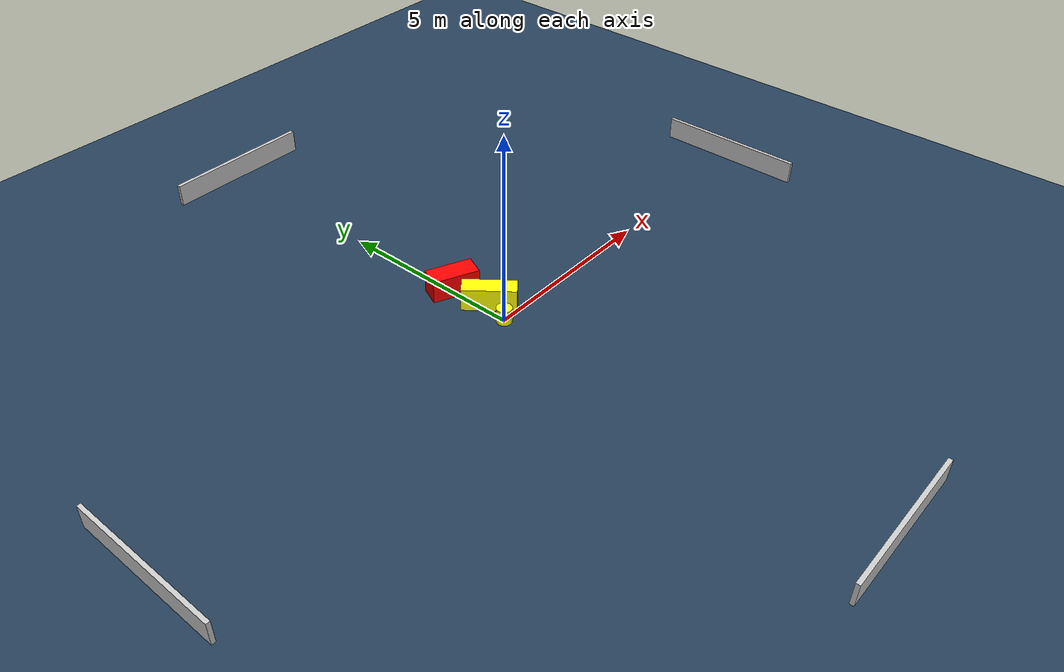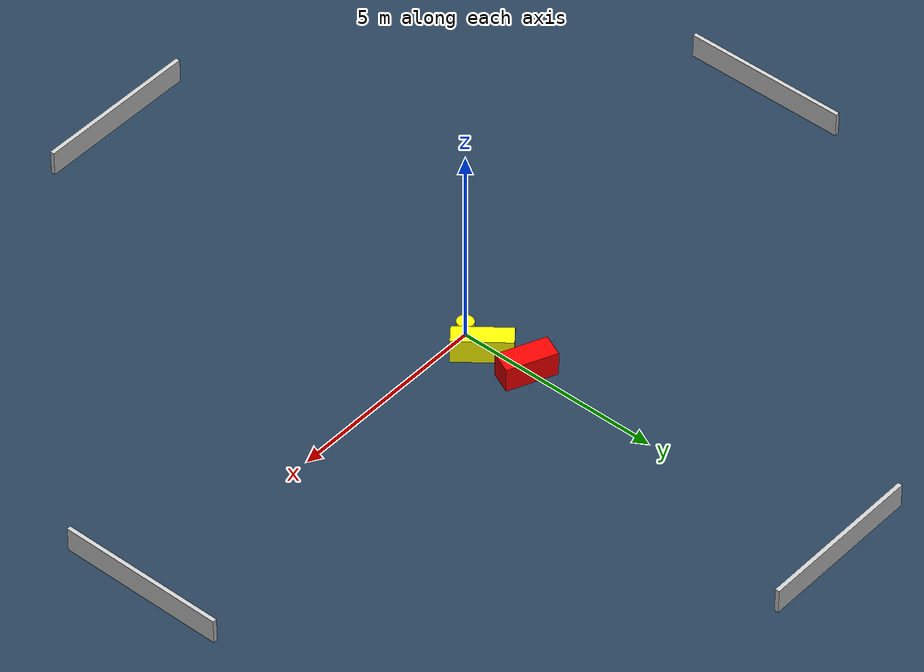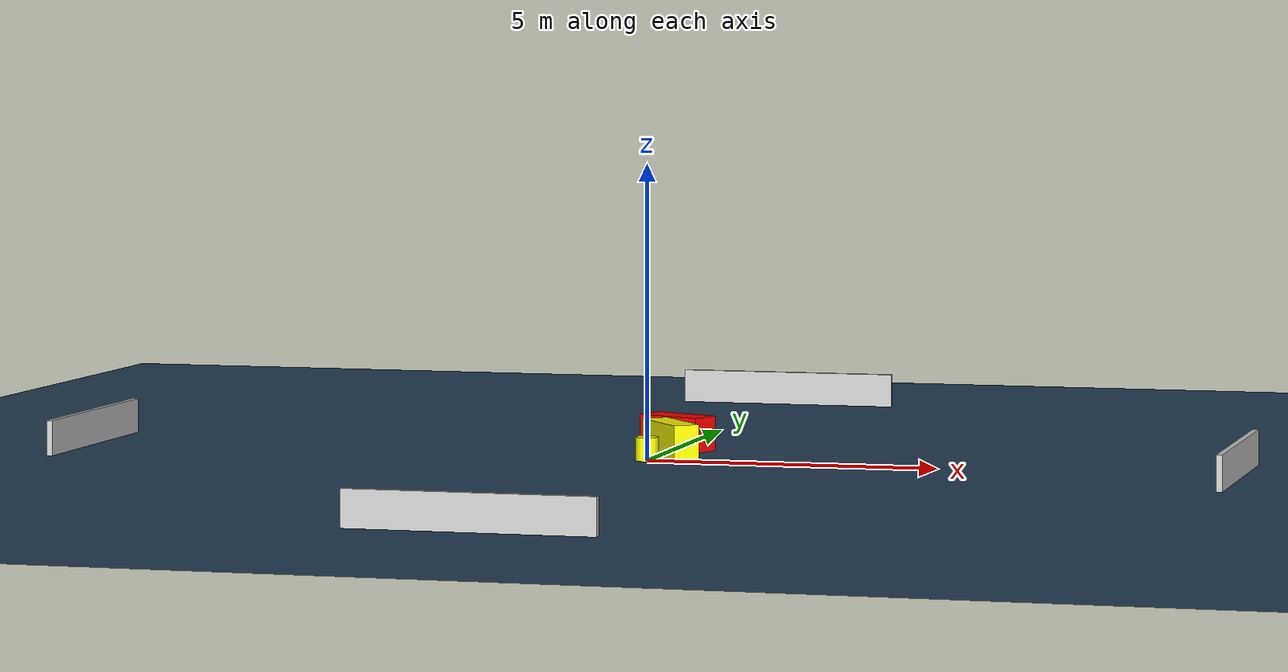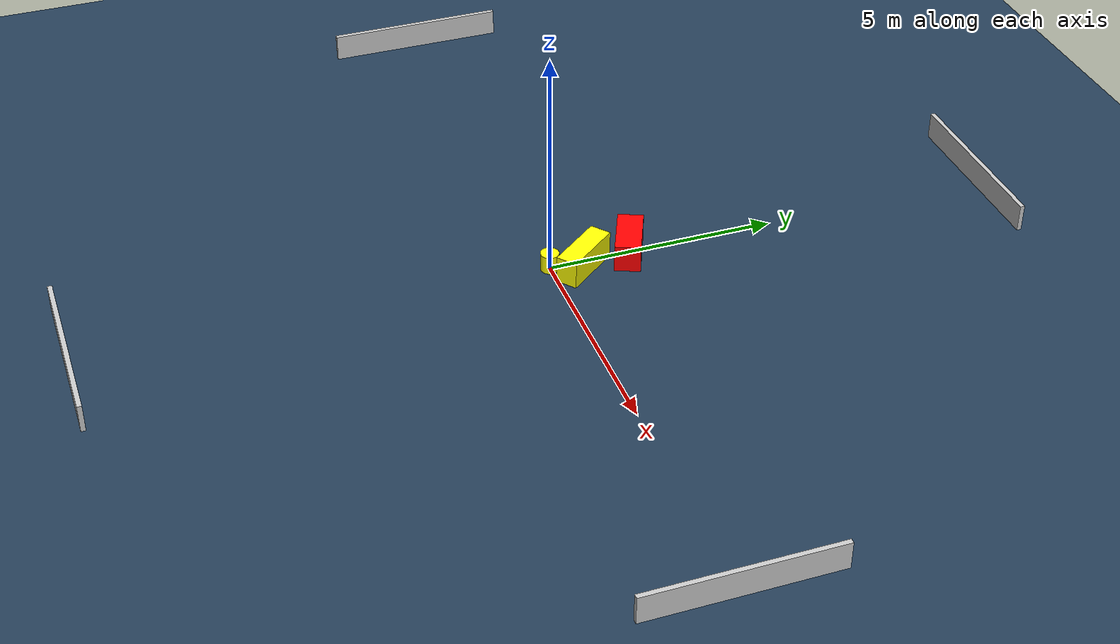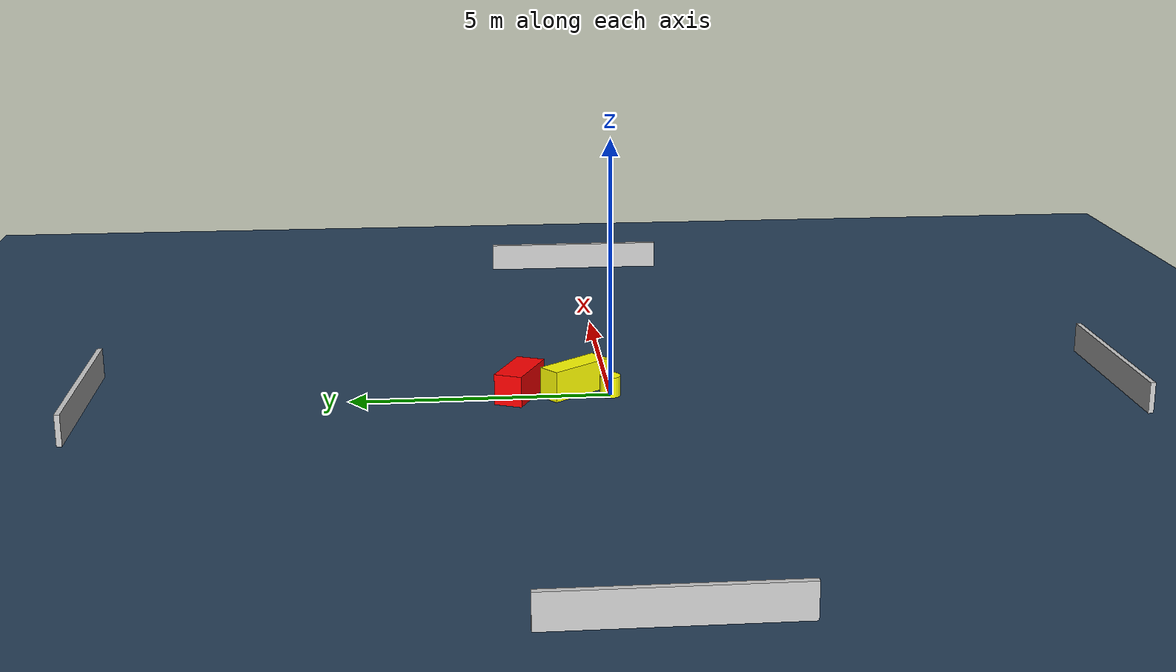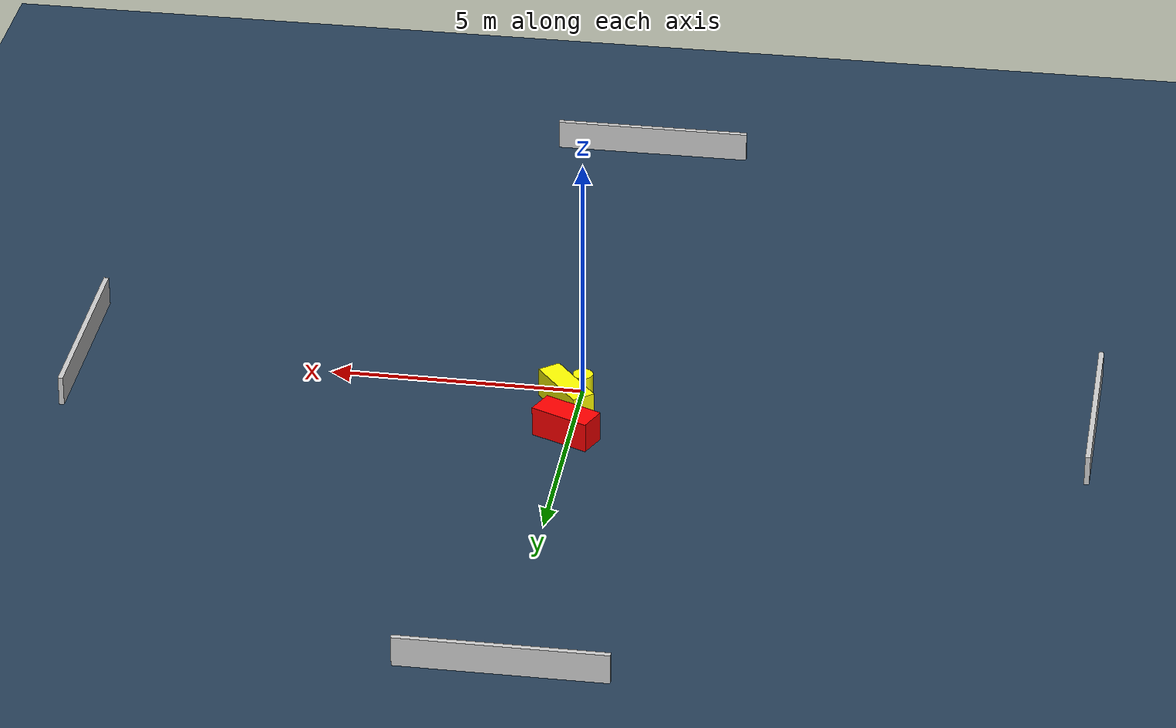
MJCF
<?xml version="1.0" ?>
<mujoco model="generated_environment">
  <option timestep="0.01" integrator="RK4" cone="elliptic"/>
  <default>
    <geom density="1"/>
  </default>
  <asset>
    <texture builtin="gradient" height="3072" name="skybox" rgb1="0.3 0.5 0.7" rgb2="0 0 0" type="skybox" width="512"/>
    <texture builtin="checker" height="300" name="groundplane" rgb1="0.2 0.3 0.4" rgb2="0.1 0.2 0.3" type="2d" width="300"/>
    <material name="groundplane" reflectance="0.2" texrepeat="5 5" texture="groundplane"/>
  </asset>
  <worldbody>
    <light dir="0 0 -1" directional="true" pos="0 0 1.5"/>
    <geom condim="3" friction="0.5 0.005 0.001" material="groundplane" name="floor" pos="0 0 0" size="0 0 0.05" type="plane"/>
    <body name="walls">
      <geom name="wall_1" condim="4" pos="-10.0 0.0 0.3" rgba="0.800000011920929 0.800000011920929 0.800000011920929 1.0" size="0.05 2.0 0.3" type="box"/>
      <geom name="wall_2" condim="4" pos="10.0 0.0 0.3" rgba="0.800000011920929 0.800000011920929 0.800000011920929 1.0" size="0.05 2.0 0.3" type="box"/>
      <geom name="wall_3" condim="4" pos="0.0 -10.0 0.3" rgba="0.800000011920929 0.800000011920929 0.800000011920929 1.0" size="2.0 0.05 0.3" type="box"/>
      <geom name="wall_4" condim="4" pos="0.0 10.0 0.3" rgba="0.800000011920929 0.800000011920929 0.800000011920929 1.0" size="2.0 0.05 0.3" type="box"/>
    </body>
    <body name="robot">
      <joint name="joint_x" type="slide" pos="0 0 0" axis="1 0 0"/>
      <joint name="joint_y" type="slide" pos="0 0 0" axis="0 1 0"/>
      <geom name="robot" type="cylinder" pos="0.0 0.0 0.2" size="0.2 0.2 0.0" mass="5.0" friction="1.0 0.005 0.0001" condim="4" rgba="1.0 1.0 0.0 1.0"/>
    </body>
    <body name="obstacle_1_movable">
      <geom name="obstacle_1_movable" condim="4" pos="0.22897524536067212 0.6693335403024829 0.3" euler="0 0 128.40665680683136" friction="0.0 0.005 0.001" rgba="1.0 1.0 0.0 1.0" size="0.67908510047682 0.23269509338500938 0.3" type="box" mass="0.1"/>
      <joint type="free"/>
    </body>
    <body name="obstacle_2_static">
      <geom name="obstacle_2_static" condim="4" pos="0.06641593240787441 1.7450546263908553 0.3" euler="0 0 336.1410001888029" friction="0.0 0.005 0.001" rgba="1.0 0.0 0.0 1.0" size="0.6083261025705322 0.2765582873814103 0.3" type="box"/>
    </body>
  </worldbody>
  <actuator>
    <motor name="actuator_x" joint="joint_x" gear="1" ctrlrange="-1 1"/>
    <motor name="actuator_y" joint="joint_y" gear="1" ctrlrange="-1 1"/>
  </actuator>
</mujoco>
